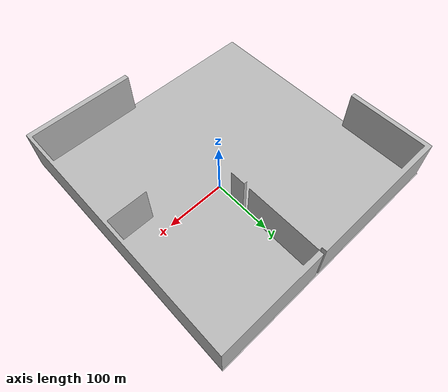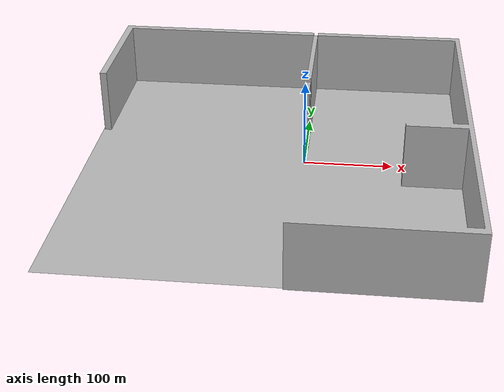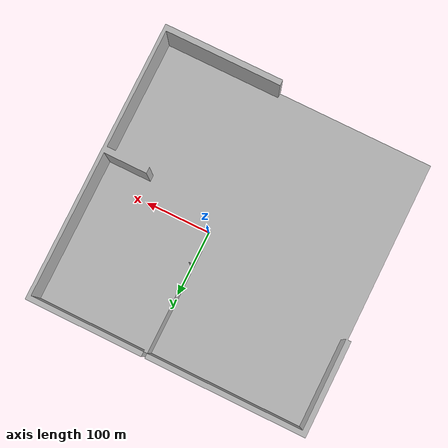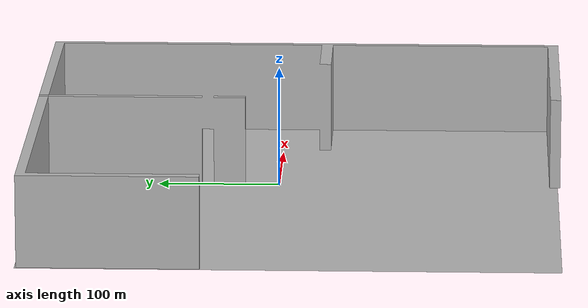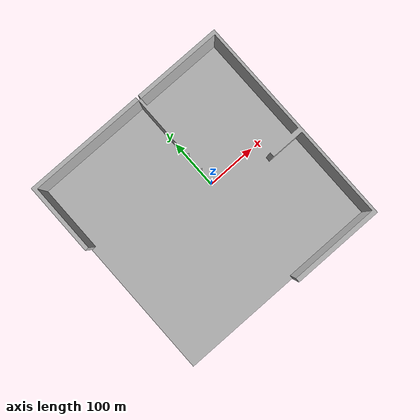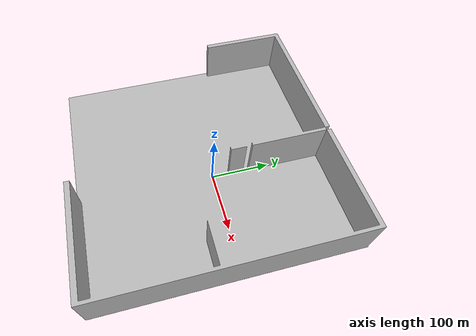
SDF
<?xml version="1.0" ?>
<sdf version="1.4">
  <world name="default">
    <include>
      <uri>model://sun</uri>
    </include>
    <include>
      <uri>model://practice</uri>
    </include>
  </world>
</sdf>

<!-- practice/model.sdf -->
<sdf version="1.4">
  <model name="practice">
    <static>true</static>
    <link name="link">
      <pose>0 0 0 0 0 0</pose>
      <must_be_base_link>1</must_be_base_link>
      <collision name="collision">
        <geometry>
          <box>
            <size>1 1 0.005</size>  <!-- adjust this to whatever you want -->
          </box>
        </geometry>
      </collision>
      <visual name="visual">
        <geometry>
          <mesh>
            <uri>model://practice/meshes/practice.dae</uri>
          </mesh>
        </geometry>
        <cast_shadows>false</cast_shadows>
      </visual>
    </link>
  </model>
</sdf>
